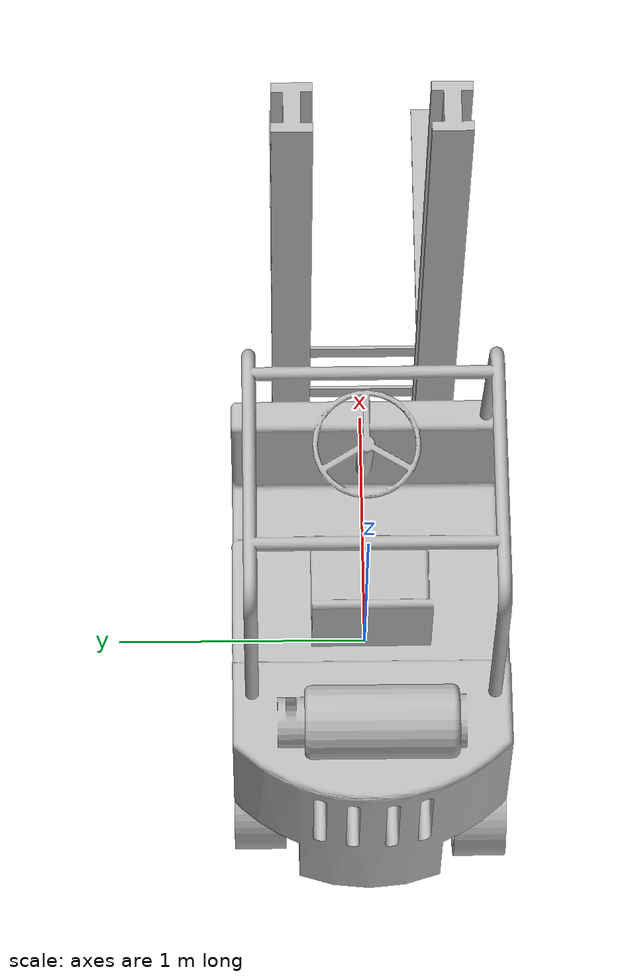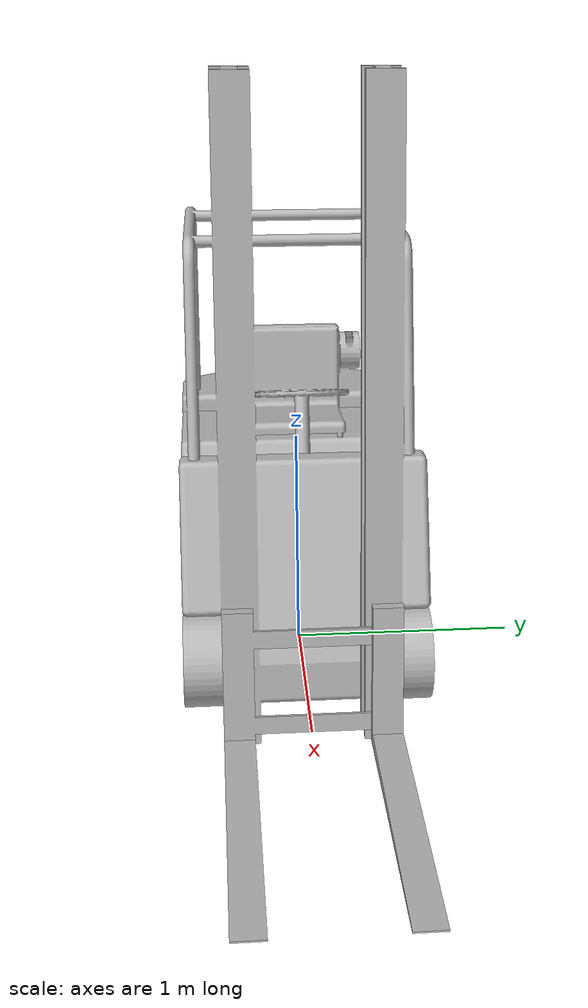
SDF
<?xml version="1.0" ?>
<sdf version="1.5">
  <model name='forklift_robot'>
  <static>false</static>
  <pose>0.0 0.0 0.0 0.0 0.0 0.0</pose>
  <link name="base_footprint"/>
    <link name='base_link'>
      <inertial>
        <pose>0 0 0 0 -0 0</pose>
        <mass>500</mass>
        <inertia>
          <ixx>206</ixx>
          <ixy>0</ixy>
          <ixz>-23</ixz>
          <iyy>389</iyy>
          <iyz>0</iyz>
          <izz>316</izz>
        </inertia>
      </inertial>
      <collision name='base_visual'>
        <pose>0 0 0 0 -0 0</pose>
        <geometry>
          <mesh>
            <scale>1 1 1</scale>
            <uri>/home/rshah/Documents/Personal_Repos/SImple_3wheel_robot/src/forklift_robot_description/meshes/base_link.dae</uri>
          </mesh>
        </geometry>
      </collision>
      <visual name='base_visual'>
        <pose>-1.0795 -0.5334 0 0 -0 0</pose>
        <geometry>
          <mesh>
            <scale>1 1 1</scale>
            <uri>/home/rshah/Documents/Personal_Repos/SImple_3wheel_robot/src/forklift_robot_description/meshes/base_link.dae</uri>
          </mesh>
        </geometry>
      </visual>
    </link>

    <!-- *********************** IMU SENSOR SETUP **************************  -->
  <link name="imu_link">
    <gravity>true</gravity>
    <sensor name="bmb_imu" type="imu">
      <always_on>true</always_on>
      <update_rate>100</update_rate>
      <visualize>true</visualize>
      <imu>
        <orientation>
          <x>
            <noise type="gaussian">
              <mean>0.0</mean>
              <stddev>2e-3</stddev>
            </noise>
          </x>
          <y>
            <noise type="gaussian">
              <mean>0.0</mean>
              <stddev>2e-3</stddev>
            </noise>
          </y>
          <z>
            <noise type="gaussian">
              <mean>0.0</mean>
              <stddev>2e-3</stddev>
            </noise>
          </z>
        </orientation>
        <angular_velocity>
          <x>
            <noise type="gaussian">
              <mean>0.0</mean>
              <stddev>2e-4</stddev>
            </noise>
          </x>
          <y>
            <noise type="gaussian">
              <mean>0.0</mean>
              <stddev>2e-4</stddev>
            </noise>
          </y>
          <z>
            <noise type="gaussian">
              <mean>0.0</mean>
              <stddev>2e-4</stddev>
            </noise>
          </z>
        </angular_velocity>
        <linear_acceleration>
          <x>
            <noise type="gaussian">
              <mean>0.0</mean>
              <stddev>1.7e-2</stddev>
            </noise>
          </x>
          <y>
            <noise type="gaussian">
              <mean>0.0</mean>
              <stddev>1.7e-2</stddev>
            </noise>
          </y>
          <z>
            <noise type="gaussian">
              <mean>0.0</mean>
              <stddev>1.7e-2</stddev>
            </noise>
          </z>
        </linear_acceleration>
      </imu>
      <plugin name="basic_mobile_bot_imu" filename="libgazebo_ros_imu_sensor.so">
        <initial_orientation_as_reference>false</initial_orientation_as_reference>
        <frame_name>imu_link</frame_name>
        <ros>
          <namespace>/imu</namespace>
          <remapping>~/out:=data</remapping>
        </ros>
      </plugin>
    </sensor>
  </link>

  <!-- *********************** GPS SETUP *********************************  -->
  <link name="gps_link">
    <sensor name="bmb_gps" type="gps">
      <always_on>true</always_on>
      <update_rate>10.0</update_rate>
      <gps>
        <position_sensing>
          <horizontal>
            <noise type="gaussian">
              <mean>0.0</mean>
              <stddev>1e-2</stddev>
            </noise>
          </horizontal>
          <vertical>
            <noise type="gaussian">
              <mean>0.0</mean>
              <stddev>1</stddev>
            </noise>
          </vertical>
        </position_sensing>
      </gps>
      <plugin name="basic_mobile_bot_gps" filename="libgazebo_ros_gps_sensor.so">
        <ros>
          <remapping>~/out:=gps/fix</remapping>
        </ros>
      </plugin>
    </sensor>
  </link>

  <!-- ****************************** LIDAR *****************************    -->
  <link name="lidar_link">
    <inertial>
      <pose>0.215 0 0.13 0 0 0</pose>
      <inertia>
        <ixx>0.001</ixx>
        <ixy>0.000</ixy>
        <ixz>0.000</ixz>
        <iyy>0.001</iyy>
        <iyz>0.000</iyz>
        <izz>0.001</izz>
      </inertia>
      <mass>0.114</mass>
    </inertial>

    <collision name="lidar_collision">
      <pose>0.215 0 0.13 0 0 0</pose>
      <geometry>
        <cylinder>
          <radius>0.0508</radius>
          <length>0.18</length>
        </cylinder>
      </geometry>
    </collision>

    <visual name="lidar_visual">
      <pose>0.215 0 0.13 0 0 0</pose>
      <geometry>
        <cylinder>
          <radius>0.0508</radius>
          <length>0.18</length>
        </cylinder>
      </geometry>
      <material>
        <ambient>0.0 0.0 0.0 1.0</ambient>
        <diffuse>0.0 0.0 0.0 1.0</diffuse>
        <specular>0.0 0.0 0.0 1.0</specular>
        <emissive>0.0 0.0 0.0 1.0</emissive>
      </material>
    </visual>

    <sensor name="lidar" type="ray">
      <pose>0.215 0 0.215 0 0 0</pose>
      <always_on>true</always_on>
      <visualize>true</visualize>
      <update_rate>5</update_rate>
      <ray>
        <scan>
          <horizontal>
            <samples>120</samples>
            <resolution>1.000000</resolution>
            <min_angle>-3.14159</min_angle>
            <max_angle>3.14159</max_angle>
          </horizontal>
        </scan>
        <range>
          <min>0.3</min>
          <max>15.0</max>
          <resolution>0.015</resolution>
        </range>
        <noise>
          <type>gaussian</type>
          <mean>0.0</mean>
          <stddev>0.01</stddev>
        </noise>
      </ray>
      <plugin name="scan" filename="libgazebo_ros_ray_sensor.so">
        <ros>
          <remapping>~/out:=scan</remapping>
        </ros>
        <output_type>sensor_msgs/LaserScan</output_type>
        <frame_name>lidar_link</frame_name>
      </plugin>
    </sensor>
  </link>

    <link name='fork'>
      <pose relative_to='base_to_fork'>0 0 0 0 -0 0</pose>
      <inertial>
        <pose>0 0 0 0 -0 0</pose>
        <mass>100</mass>
        <inertia>
          <ixx>0.2</ixx>
          <ixy>0</ixy>
          <ixz>0</ixz>
          <iyy>0.3</iyy>
          <iyz>0</iyz>
          <izz>0.4</izz>
        </inertia>
      </inertial>
      <collision name='fork_collision'>
        <pose>0 0 0 0 -0 0</pose>
        <geometry>
          <mesh>
            <scale>1 1 1</scale>
            <uri>/home/rshah/Documents/Personal_Repos/SImple_3wheel_robot/src/forklift_robot_description/meshes/fork.dae</uri>
          </mesh>
        </geometry>
      </collision>
      <visual name='fork_visual'>
        <pose>0 0 0 0 -0 0</pose>
        <geometry>
          <mesh>
            <scale>1 1 1</scale>
            <uri>/home/rshah/Documents/Personal_Repos/SImple_3wheel_robot/src/forklift_robot_description/meshes/fork.dae</uri>
          </mesh>
        </geometry>
      </visual>
    </link>
      <joint name='base_to_fork' type='prismatic'>
      <pose relative_to='base_link'>1.0795 -0.3686 0 0 -0 0</pose>
      <parent>base_link</parent>
      <child>fork</child>
      <axis>
        <xyz>0 0 1</xyz>
        <limit>
          <lower>0</lower>
          <upper>2</upper>
          <effort>100</effort>
          <velocity>0.1</velocity>
        </limit>
        <dynamics>
          <spring_reference>0</spring_reference>
          <spring_stiffness>0</spring_stiffness>
        </dynamics>
      </axis>
    </joint>
    <joint name='base_to_wheel_back_left' type='revolute'>
      <pose relative_to='base_link'>-0.7865 -0.5334 0.2032 0 -0 0</pose>
      <parent>base_link</parent>
      <child>wheel_back_left</child>
      <axis>
        <xyz>0 1 0</xyz>
        <limit>
          <effort>1000</effort>
          <velocity>10</velocity>
          <lower>-1e+16</lower>
          <upper>1e+16</upper>
        </limit>
        <dynamics>
          <spring_reference>0</spring_reference>
          <spring_stiffness>0</spring_stiffness>
        </dynamics>
      </axis>
    </joint>
    <link name='wheel_back_left'>
      <pose relative_to='base_to_wheel_back_left'>0 0 0 0 -0 0</pose>
      <inertial>
        <pose>0 0 0 0 -0 0</pose>
        <mass>5</mass>
        <inertia>
          <ixx>0.001</ixx>
          <ixy>0</ixy>
          <ixz>0</ixz>
          <iyy>0.0015</iyy>
          <iyz>0</iyz>
          <izz>0.001</izz>
        </inertia>
      </inertial>
      <collision name='wheel_back_left_collision'>
        <pose>0 0.1 0 1.571 -0 0</pose>
        <geometry>
          <cylinder>
            <length>0.2</length>
            <radius>0.21</radius>
          </cylinder>
        </geometry>
      </collision>
      <visual name='wheel_back_left_visual'>
        <pose>-0.2032 0 -0.2032 0 -0 0</pose>
        <geometry>
          <mesh>
            <scale>1 1 1</scale>
            <uri>/home/rshah/Documents/Personal_Repos/SImple_3wheel_robot/src/forklift_robot_description/meshes/wheel.dae</uri>
          </mesh>
        </geometry>
      </visual>
    </link>
    <joint name='base_to_wheel_back_right' type='revolute'>
      <pose relative_to='base_link'>-0.7502 0.3302 0.2032 0 -0 0</pose>
      <parent>base_link</parent>
      <child>wheel_back_right</child>
      <axis>
        <xyz>0 1 0</xyz>
        <limit>
          <effort>1000</effort>
          <velocity>10</velocity>
          <lower>-1e+16</lower>
          <upper>1e+16</upper>
        </limit>
        <dynamics>
          <spring_reference>0</spring_reference>
          <spring_stiffness>0</spring_stiffness>
        </dynamics>
      </axis>
    </joint>
    <link name='wheel_back_right'>
      <pose relative_to='base_to_wheel_back_right'>0 0 0 0 -0 0</pose>
      <inertial>
        <pose>0 0 0 0 -0 0</pose>
        <mass>5</mass>
        <inertia>
          <ixx>0.001</ixx>
          <ixy>0</ixy>
          <ixz>0</ixz>
          <iyy>0.0015</iyy>
          <iyz>0</iyz>
          <izz>0.001</izz>
        </inertia>
      </inertial>
      <collision name='wheel_back_right_collision'>
        <pose>0 0.1 0 1.571 -0 0</pose>
        <geometry>
          <cylinder>
            <length>0.2</length>
            <radius>0.21</radius>
          </cylinder>
        </geometry>
      </collision>
      <visual name='wheel_back_right_visual'>
        <pose>-0.2032 0 -0.2032 0 -0 0</pose>
        <geometry>
          <mesh>
            <scale>1 1 1</scale>
            <uri>/home/rshah/Documents/Personal_Repos/SImple_3wheel_robot/src/forklift_robot_description/meshes/wheel.dae</uri>
          </mesh>
        </geometry>
      </visual>
    </link>
    <joint name='base_to_wheel_front_left' type='revolute'>
      <pose relative_to='base_link'>0.6722 0.3302 0.2032 0 -0 0</pose>
      <parent>base_link</parent>
      <child>wheel_front_left</child>
      <axis>
        <xyz>0 1 0</xyz>
        <limit>
          <effort>1000</effort>
          <velocity>10</velocity>
          <lower>-1e+16</lower>
          <upper>1e+16</upper>
        </limit>
        <dynamics>
          <spring_reference>0</spring_reference>
          <spring_stiffness>0</spring_stiffness>
        </dynamics>
      </axis>
    </joint>
    <link name='wheel_front_left'>
      <pose relative_to='base_to_wheel_front_left'>0 0 0 0 -0 0</pose>
      <inertial>
        <pose>0 0 0 0 -0 0</pose>
        <mass>5</mass>
        <inertia>
          <ixx>0.001</ixx>
          <ixy>0</ixy>
          <ixz>0</ixz>
          <iyy>0.0015</iyy>
          <iyz>0</iyz>
          <izz>0.001</izz>
        </inertia>
      </inertial>
      <collision name='wheel_front_left_collision'>
        <pose>0 0.1 0 1.571 -0 0</pose>
        <geometry>
          <cylinder>
            <length>0.2</length>
            <radius>0.21</radius>
          </cylinder>
        </geometry>
      </collision>
      <visual name='wheel_front_left_visual'>
        <pose>-0.2032 0 -0.2032 0 -0 0</pose>
        <geometry>
          <mesh>
            <scale>1 1 1</scale>
            <uri>/home/rshah/Documents/Personal_Repos/SImple_3wheel_robot/src/forklift_robot_description/meshes/wheel.dae</uri>
          </mesh>
        </geometry>
      </visual>
    </link>
    <joint name='base_to_wheel_front_right' type='revolute'>
      <pose relative_to='base_link'>0.6722 -0.5334 0.2032 0 -0 0</pose>
      <parent>base_link</parent>
      <child>wheel_front_right</child>
      <axis>
        <xyz>0 1 0</xyz>
        <limit>
          <effort>1000</effort>
          <velocity>10</velocity>
          <lower>-1e+16</lower>
          <upper>1e+16</upper>
        </limit>
        <dynamics>
          <spring_reference>0</spring_reference>
          <spring_stiffness>0</spring_stiffness>
        </dynamics>
      </axis>
    </joint>

    <link name='wheel_front_right'>
      <pose relative_to='base_to_wheel_front_right'>0 0 0 0 -0 0</pose>
      <inertial>
        <pose>0 0 0 0 -0 0</pose>
        <mass>5</mass>
        <inertia>
          <ixx>0.001</ixx>
          <ixy>0</ixy>
          <ixz>0</ixz>
          <iyy>0.0015</iyy>
          <iyz>0</iyz>
          <izz>0.001</izz>
        </inertia>
      </inertial>
      <collision name='wheel_front_right_collision'>
        <pose>0 0.1 0 1.571 -0 0</pose>
        <geometry>
          <cylinder>
            <length>0.2</length>
            <radius>0.21</radius>
          </cylinder>
        </geometry>
      </collision>
      <visual name='wheel_front_right_visual'>
        <pose>-0.2032 0 -0.2032 0 -0 0</pose>
        <geometry>
          <mesh>
            <scale>1 1 1</scale>
            <uri>/home/rshah/Documents/Personal_Repos/SImple_3wheel_robot/src/forklift_robot_description/meshes/wheel.dae</uri>
          </mesh>
        </geometry>
      </visual>
    </link>
    <joint name="imu_joint" type="fixed">
    <parent>base_link</parent>
    <child>imu_link</child>
    <pose>0 0 0 0 0 0</pose>
  </joint>

  <joint name="gps_joint" type="fixed">
    <parent>base_link</parent>
    <child>gps_link</child>
    <pose>0 0 0 0 0 0</pose>
  </joint>

  <joint name="lidar_joint" type="fixed">
    <parent>base_link</parent>
    <child>lidar_link</child>
    <pose>0 0 0 0 0 0</pose>
  </joint>

<!-- *********************** WHEEL ODOMETRY ***************************    -->
  <plugin name="basic_mobile_bot_diff_drive" filename="libgazebo_ros_diff_drive.so">

    <update_rate>30</update_rate>

    <!-- wheels -->
    <left_joint>base_to_wheel_back_left</left_joint>
    <right_joint>base_to_wheel_back_right</right_joint>

    <!-- kinematics -->
    <wheel_separation>0.86</wheel_separation>
    <wheel_diameter>0.15</wheel_diameter>

    <!-- limits -->
    <max_wheel_torque>20</max_wheel_torque>
    <max_wheel_acceleration>1.0</max_wheel_acceleration>

    <!-- Receive velocity commands on this ROS topic -->
    <command_topic>cmd_vel</command_topic>

    <!-- output -->
    <!-- When false, publish no wheel odometry data to a ROS topic -->
    <publish_odom>true</publish_odom>

    <!-- When true, publish coordinate transform from odom to base_footprint -->
    <!-- I usually use the robot_localization package to publish this transform -->
    <publish_odom_tf>false</publish_odom_tf>

    <!-- When true, publish coordinate transform from base_link to the wheels -->
    <!-- The robot_state_publisher package is often used to publish this transform -->
    <publish_wheel_tf>false</publish_wheel_tf>

    <odometry_topic>odom</odometry_topic>
    <odometry_frame>odom</odometry_frame>
    <robot_base_frame>base_footprint</robot_base_frame>

    <!-- Odometry source, 0 for ENCODER, 1 for WORLD, defaults to WORLD -->
    <odometry_source>1</odometry_source>

    <!-- Change the ROS topic we will publish the odometry data to -->
    <ros>
      <remapping>odom:=wheel/odometry</remapping>
    </ros>

  </plugin>

 <!-- *********************** JOINT STATE PUBLISHER *********************   -->

  <plugin name="basic_mobile_bot_joint_state" filename="libgazebo_ros_joint_state_publisher.so">
    <ros>
      <remapping>~/out:=joint_states</remapping>
    </ros>
    <update_rate>10</update_rate>
    <joint_name>base_to_wheel_back_left</joint_name>
    <joint_name>base_to_wheel_back_right</joint_name>
    <joint_name>base_to_wheel_front_right</joint_name>
    <joint_name>base_to_wheel_front_left</joint_name>
    <joint_name>base_to_fork</joint_name>
  </plugin>
  </model>
</sdf>
